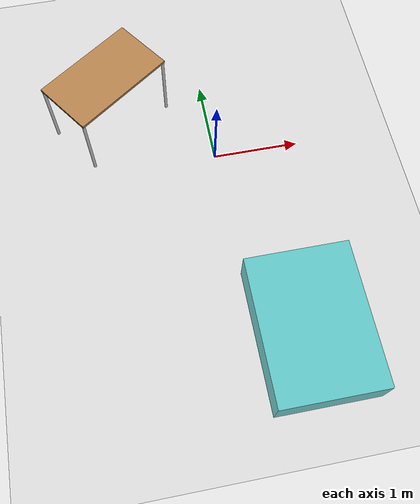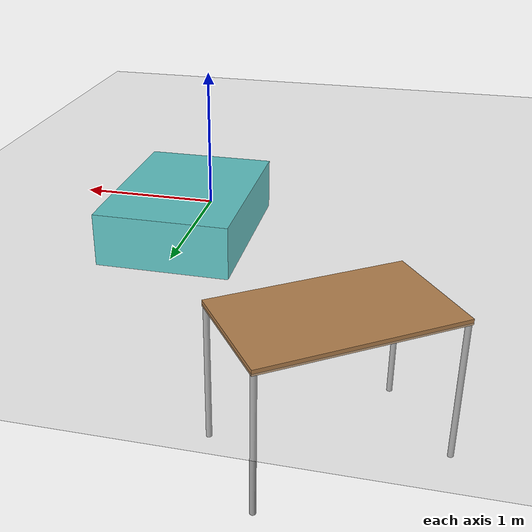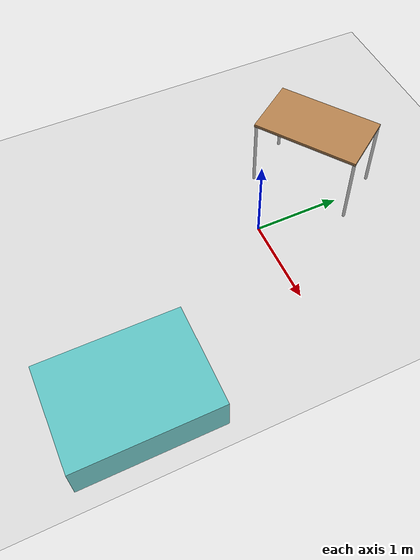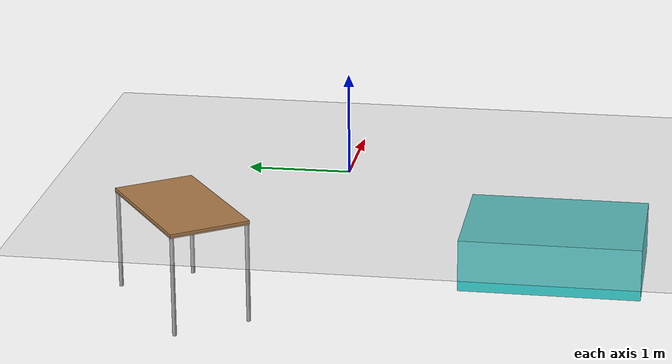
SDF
<sdf version="1.4">
 <world name="default">
  <include><uri>model://sun</uri></include>
  <include><uri>model://ground_plane</uri></include>
  <physics type="ode">
   <real_time_update_rate>1000.0</real_time_update_rate>
   <max_step_size>0.001</max_step_size>
   <real_time_factor>1</real_time_factor>
   <ode>
    <solver>
     <type>quick</type>
     <iters>150</iters>
     <precon_iters>0</precon_iters>
     <sor>1.400000</sor>
     <use_dynamic_moi_rescaling>1</use_dynamic_moi_rescaling>
    </solver>
    <constraints>
     <cfm>0.00001</cfm>
     <erp>0.2</erp>
     <contact_max_correcting_vel>2000.000000</contact_max_correcting_vel>
     <contact_surface_layer>0.01000</contact_surface_layer>
    </constraints>
   </ode>
  </physics>
  <scene><ambient>0.4 0.4 0.4 1</ambient><background>0.7 0.7 0.7 1</background><shadows>true</shadows></scene>
  <include>
   <uri>model://wooden_table</uri>
   <pose>-1.1680460348859039 1.4345046828937826 -1 0 -0 0.6168776846989963</pose>
   <name>wooden_table1</name>
  </include>
  <include>
   <uri>model://box4</uri>
   <pose>0.8292310179173213 -1.9856750411266901 -1 0 -0 1.57</pose>
   <name>box4</name>
  </include>
 </world>
</sdf>

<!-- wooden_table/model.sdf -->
<sdf version='1.6'>
  <model name='wooden_table'>
    <static>0</static>
    <link name='link'>
      <collision name='surface'>
        <pose frame=''>0 0 1 0 -0 0</pose>
        <geometry>
          <box>
            <size>1.5 0.8 0.03</size>
          </box>
        </geometry>
        <surface>
          <friction>
            <ode>
              <mu>0.6</mu>
              <mu2>0.6</mu2>
            </ode>
          </friction>
        </surface>
      </collision>
      <visual name='visual1'>
        <pose frame=''>0 0 1 0 -0 0</pose>
        <geometry>
          <box>
            <size>1.4 0.8 0.04</size>
          </box>
        </geometry>
        <material>
          <script>
            <uri>file://media/materials/scripts/gazebo.material</uri>
            <name>Gazebo/Wood</name>
          </script>
        </material>
      </visual>
      <collision name='front_left_leg'>
        <pose frame=''>0.68 0.38 0.5 0 -0 0</pose>
        <geometry>
          <cylinder>
            <radius>0.02</radius>
            <length>1</length>
          </cylinder>
        </geometry>
        </collision>
      <visual name='front_left_leg'>
        <pose frame=''>0.68 0.38 0.5 0 -0 0</pose>
        <geometry>
          <cylinder>
            <radius>0.02</radius>
            <length>1</length>
          </cylinder>
        </geometry>
        <material>
          <script>
            <uri>file://media/materials/scripts/gazebo.material</uri>
            <name>Gazebo/Grey</name>
          </script>
        </material>
      </visual>
      <collision name='front_right_leg'>
        <pose frame=''>0.68 -0.38 0.5 0 -0 0</pose>
        <geometry>
          <cylinder>
            <radius>0.02</radius>
            <length>1</length>
          </cylinder>
        </geometry>
      </collision>
      <visual name='front_right_leg'>
        <pose frame=''>0.68 -0.38 0.5 0 -0 0</pose>
        <geometry>
          <cylinder>
            <radius>0.02</radius>
            <length>1</length>
          </cylinder>
        </geometry>
        <material>
          <script>
            <uri>file://media/materials/scripts/gazebo.material</uri>
            <name>Gazebo/Grey</name>
          </script>
        </material>
      </visual>
      <collision name='back_right_leg'>
        <pose frame=''>-0.68 -0.38 0.5 0 -0 0</pose>
        <geometry>
          <cylinder>
            <radius>0.02</radius>
            <length>1</length>
          </cylinder>
        </geometry>
      </collision>
      <visual name='back_right_leg'>
        <pose frame=''>-0.68 -0.38 0.5 0 -0 0</pose>
        <geometry>
          <cylinder>
            <radius>0.02</radius>
            <length>1</length>
          </cylinder>
        </geometry>
        <material>
          <script>
            <uri>file://media/materials/scripts/gazebo.material</uri>
            <name>Gazebo/Grey</name>
          </script>
        </material>
      </visual>
      <collision name='back_left_leg'>
        <pose frame=''>-0.68 0.38 0.5 0 -0 0</pose>
        <geometry>
          <cylinder>
            <radius>0.02</radius>
            <length>1</length>
          </cylinder>
        </geometry>
      </collision>
      <visual name='back_left_leg'>
        <pose frame=''>-0.68 0.38 0.5 0 -0 0</pose>
        <geometry>
          <cylinder>
            <radius>0.02</radius>
            <length>1</length>
          </cylinder>
        </geometry>
        <material>
          <script>
            <uri>file://media/materials/scripts/gazebo.material</uri>
            <name>Gazebo/Grey</name>
          </script>
        </material>
      </visual>
    </link>
    <pose frame=''>-2.65728 2.42376 0 0 -0 0</pose>
  </model>
</sdf>

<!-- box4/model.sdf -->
<sdf version="1.6">
  <model name="box4">
    <link name="link_1">
      <pose frame="">-7e-06 -7e-06 0 0 -0 0</pose>
      <inertial>
        <mass>1</mass>
        <inertia>
          <ixx>0.166667</ixx>
          <ixy>0</ixy>
          <ixz>0</ixz>
          <iyy>0.166667</iyy>
          <iyz>0</iyz>
          <izz>0.166667</izz>
        </inertia>
      </inertial>
      <visual name="visual">
        <pose frame="">0 0 0 0 -0 0</pose>
        <geometry>
          <box>
            <size>1.8371763090489623 1.3486671344796817 0.5382705374490802</size>
          </box>
        </geometry>
        <material>
          <lighting>1</lighting>
          <script>
            <uri>file://media/materials/scripts/gazebo.material</uri>
            <name>Gazebo/Turquoise</name>
          </script>
          <shader type="pixel" />
        </material>
        <transparency>0</transparency>
        <cast_shadows>1</cast_shadows>
      </visual>
      <collision name="collision">
        <laser_retro>0</laser_retro>
        <max_contacts>10</max_contacts>
        <pose frame="">0 0 0 0 -0 0</pose>
        <geometry>
          <box>
            <size>1.8371763090489623 1.3486671344796817 0.5382705374490802</size>
          </box>
        </geometry>
        <surface>
          <friction>
            <ode>
              <mu>1</mu>
              <mu2>1</mu2>
              <fdir1>0 0 0</fdir1>
              <slip1>0</slip1>
              <slip2>0</slip2>
            </ode>
            <torsional>
              <coefficient>1</coefficient>
              <patch_radius>0</patch_radius>
              <surface_radius>0</surface_radius>
              <use_patch_radius>1</use_patch_radius>
              <ode>
                <slip>0</slip>
              </ode>
            </torsional>
          </friction>
          <bounce>
            <restitution_coefficient>0</restitution_coefficient>
            <threshold>1e+06</threshold>
          </bounce>
          <contact>
            <collide_without_contact>0</collide_without_contact>
            <collide_without_contact_bitmask>1</collide_without_contact_bitmask>
            <collide_bitmask>1</collide_bitmask>
            <ode>
              <soft_cfm>0</soft_cfm>
              <soft_erp>0.2</soft_erp>
              <kp>1e+13</kp>
              <kd>1</kd>
              <max_vel>0.01</max_vel>
              <min_depth>0</min_depth>
            </ode>
            <bullet>
              <split_impulse>1</split_impulse>
              <split_impulse_penetration_threshold>-0.01</split_impulse_penetration_threshold>
              <soft_cfm>0</soft_cfm>
              <soft_erp>0.2</soft_erp>
              <kp>1e+13</kp>
              <kd>1</kd>
            </bullet>
          </contact>
        </surface>
      </collision>
    </link>
    <static>0</static>
    <allow_auto_disable>1</allow_auto_disable>
  </model>
</sdf>
